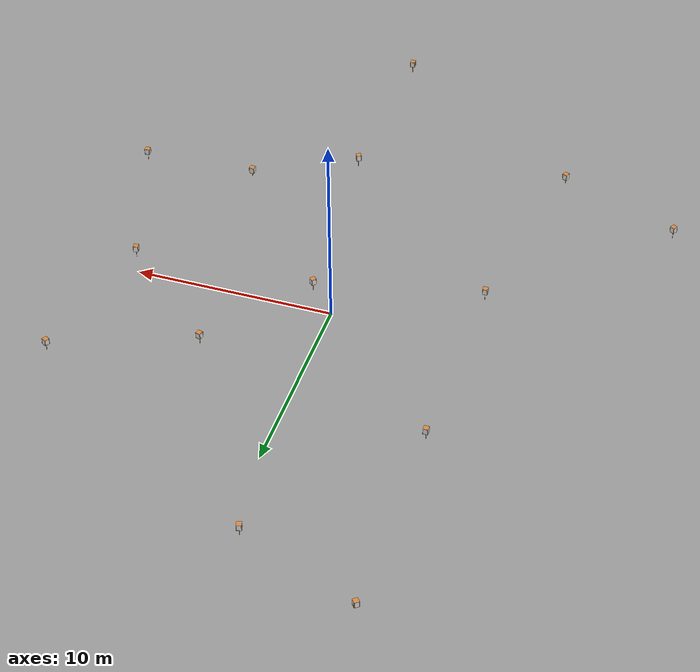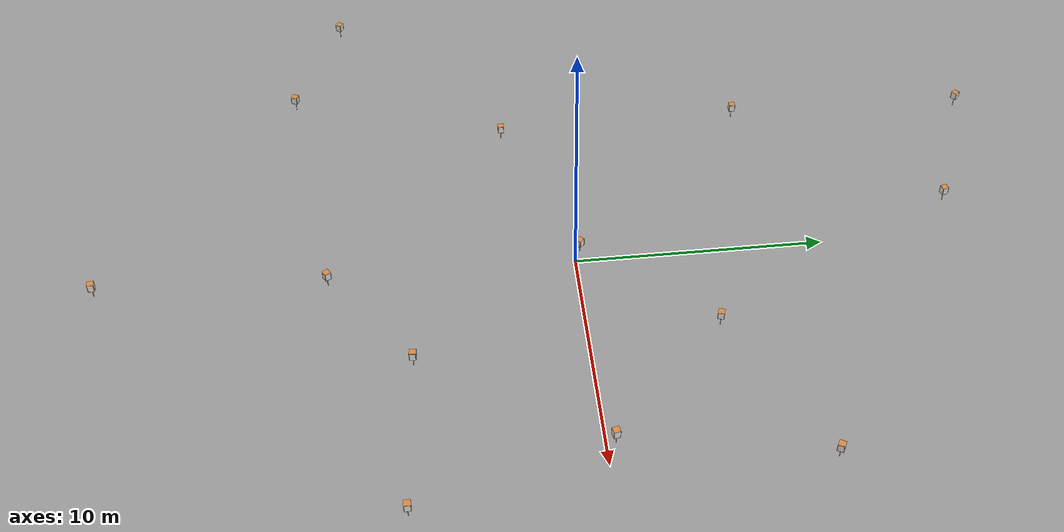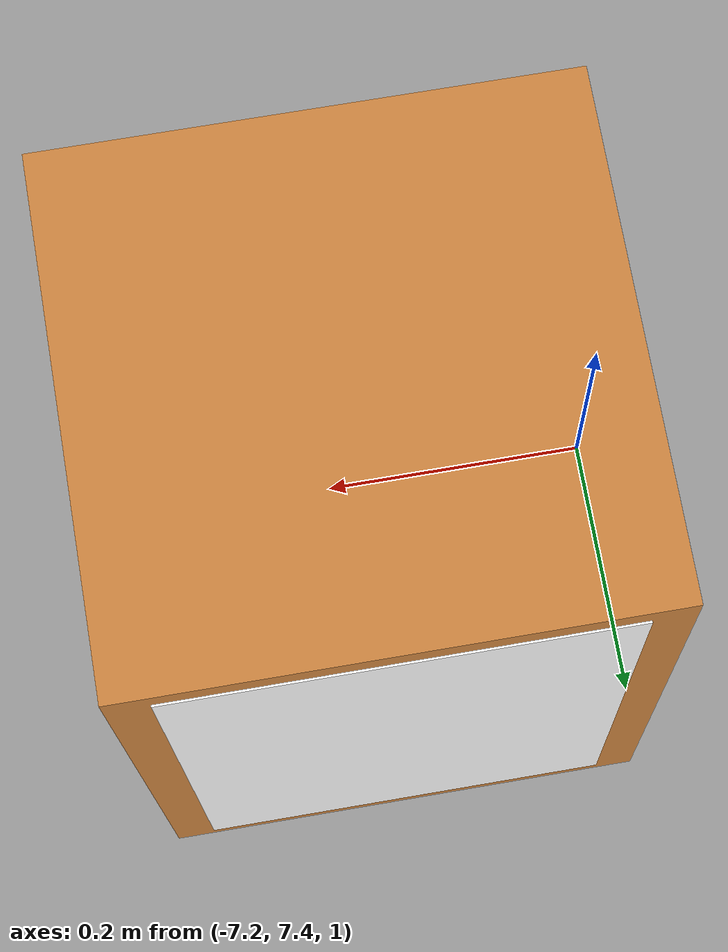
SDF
<sdf version="1.9">
 <world name="marsyard2022">
  <physics name="fast" type="bullet">
   <max_step_size>0.033</max_step_size>
   <real_time_factor>1.0</real_time_factor>
  </physics>
  <plugin filename="gz-sim-physics-system" name="gz::sim::systems::Physics"/>
  <plugin filename="gz-sim-scene-broadcaster-system" name="gz::sim::systems::SceneBroadcaster"/>
  <plugin filename="gz-sim-sensors-system" name="gz::sim::systems::Sensors">
   <render_engine>ogre2</render_engine>
  </plugin>
  <plugin filename="gz-sim-user-commands-system" name="gz::sim::systems::UserCommands"/>
  <plugin filename="WorldControl" name="World control">
   <gz-gui>
    <title>World control</title>
    <property key="showTitleBar" type="bool">false</property>
    <property key="resizable" type="bool">false</property>
    <property key="height" type="double">72</property>
    <property key="width" type="double">121</property>
    <property key="z" type="double">1</property>
    <property key="state" type="string">floating</property>
    <anchors target="3D View"><line own="left" target="left"/><line own="bottom" target="bottom"/></anchors>
   </gz-gui>
   <play_pause>true</play_pause>
   <step>true</step>
   <start_paused>true</start_paused>
   <service>/world/world_demo/control</service>
   <stats_topic>/world/world_demo/stats</stats_topic>
  </plugin>
  <light name="sun" type="directional">
   <pose>0 0 100 0 0 0.01</pose>
   <diffuse>1 1 1 1</diffuse>
   <specular>0.1 0.1 0.1 1</specular>
   <direction>-0.2 -1.0 -1.0</direction>
  </light>
  <scene>
   <ambient>0.6 0.6 0.6 1.0</ambient>
   <sky><clouds><speed>12</speed></clouds></sky>
   <shadows>true</shadows>
   <origin_visual>false</origin_visual>
  </scene>
  <model name="landmark1">
   <pose>-7.003806999999998 7.617856 1.172268 0 0 0.0</pose>
   <static>true</static>
   <link name="landmark">
    <visual name="pole_visual">
     <pose>0 0 0.09999999999999999 0 0 0</pose>
     <geometry><cylinder><radius>0.01</radius><length>0.4</length></cylinder></geometry>
     <material>
      <ambient>0.3 0.2 0.1 1</ambient>
      <diffuse>0.6 0.4 0.2 1</diffuse>
      <specular>0.1 0.1 0.1 1</specular>
      <emissive>0 0 0 1</emissive>
     </material>
    </visual>
    <collision name="pole_collision">
     <pose>0 0 0.09999999999999999 0 0 0</pose>
     <geometry><cylinder><radius>0.01</radius><length>0.4</length></cylinder></geometry>
    </collision>
    <visual name="box_visual">
     <pose>0 0 0.45999999999999996 0 0 0</pose>
     <geometry><box><size>0.25 0.25 0.32</size></box></geometry>
     <material>
      <ambient>0.8 0.52 0.25 1.0</ambient>
      <diffuse>0.8 0.52 0.25 1.0</diffuse>
      <specular>0.1 0.1 0.1 1.0</specular>
      <emissive>0.0 0.0 0.0 1.0</emissive>
     </material>
    </visual>
    <collision name="box_collision">
     <pose>0 0 0.45999999999999996 0 0 0</pose>
     <geometry><box><size>0.25 0.25 0.32</size></box></geometry>
    </collision>
    <visual name="sheet1">
     <pose>0 0.1235 0.45999999999999996 0 0 0</pose>
     <geometry><box><size>0.21 0.005 0.297</size></box></geometry>
     <material>
      <double_sided>true</double_sided>
      <ambient>1 1 1 1</ambient>
      <diffuse>1 1 1 1</diffuse>
      <specular>1 1 1 1</specular>
      <emissive>0 0 0 1</emissive>
      <pbr>
       <metal>
        <albedo_map>model://materials/textures/erc_landmark_1.png</albedo_map>
        <roughness>0.5</roughness>
        <metalness>0.0</metalness>
       </metal>
      </pbr>
     </material>
    </visual>
    <visual name="sheet2">
     <pose>0 -0.1235 0.45999999999999996 0 0 0</pose>
     <geometry><box><size>0.21 0.005 0.297</size></box></geometry>
     <material>
      <double_sided>true</double_sided>
      <ambient>1 1 1 1</ambient>
      <diffuse>1 1 1 1</diffuse>
      <specular>1 1 1 1</specular>
      <emissive>0 0 0 1</emissive>
      <pbr>
       <metal>
        <albedo_map>model://materials/textures/erc_landmark_1.png</albedo_map>
        <roughness>0.5</roughness>
        <metalness>0.0</metalness>
       </metal>
      </pbr>
     </material>
    </visual>
    <visual name="sheet3">
     <pose>0.1235 0 0.45999999999999996 0 0 1.5707963267948966</pose>
     <geometry><box><size>0.21 0.005 0.297</size></box></geometry>
     <material>
      <double_sided>true</double_sided>
      <ambient>1 1 1 1</ambient>
      <diffuse>1 1 1 1</diffuse>
      <specular>1 1 1 1</specular>
      <emissive>0 0 0 1</emissive>
      <pbr>
       <metal>
        <albedo_map>model://materials/textures/erc_landmark_1.png</albedo_map>
        <roughness>0.5</roughness>
        <metalness>0.0</metalness>
       </metal>
      </pbr>
     </material>
    </visual>
    <visual name="sheet4">
     <pose>-0.1235 0 0.45999999999999996 0 0 1.5707963267948966</pose>
     <geometry><box><size>0.21 0.005 0.297</size></box></geometry>
     <material>
      <double_sided>true</double_sided>
      <ambient>1 1 1 1</ambient>
      <diffuse>1 1 1 1</diffuse>
      <specular>1 1 1 1</specular>
      <emissive>0 0 0 1</emissive>
      <pbr>
       <metal>
        <albedo_map>model://materials/textures/erc_landmark_1.png</albedo_map>
        <roughness>0.5</roughness>
        <metalness>0.0</metalness>
       </metal>
      </pbr>
     </material>
    </visual>
   </link>
  </model>
  <model name="landmark2">
   <pose>-7.003806999999998 -2.3821440000000003 0.8922680000000001 0 0 0.0</pose>
   <static>true</static>
   <link name="landmark">
    <visual name="pole_visual">
     <pose>0 0 0.09999999999999999 0 0 0</pose>
     <geometry><cylinder><radius>0.01</radius><length>0.4</length></cylinder></geometry>
     <material>
      <ambient>0.3 0.2 0.1 1</ambient>
      <diffuse>0.6 0.4 0.2 1</diffuse>
      <specular>0.1 0.1 0.1 1</specular>
      <emissive>0 0 0 1</emissive>
     </material>
    </visual>
    <collision name="pole_collision">
     <pose>0 0 0.09999999999999999 0 0 0</pose>
     <geometry><cylinder><radius>0.01</radius><length>0.4</length></cylinder></geometry>
    </collision>
    <visual name="box_visual">
     <pose>0 0 0.45999999999999996 0 0 0</pose>
     <geometry><box><size>0.25 0.25 0.32</size></box></geometry>
     <material>
      <ambient>0.8 0.52 0.25 1.0</ambient>
      <diffuse>0.8 0.52 0.25 1.0</diffuse>
      <specular>0.1 0.1 0.1 1.0</specular>
      <emissive>0.0 0.0 0.0 1.0</emissive>
     </material>
    </visual>
    <collision name="box_collision">
     <pose>0 0 0.45999999999999996 0 0 0</pose>
     <geometry><box><size>0.25 0.25 0.32</size></box></geometry>
    </collision>
    <visual name="sheet1">
     <pose>0 0.1235 0.45999999999999996 0 0 0</pose>
     <geometry><box><size>0.21 0.005 0.297</size></box></geometry>
     <material>
      <double_sided>true</double_sided>
      <ambient>1 1 1 1</ambient>
      <diffuse>1 1 1 1</diffuse>
      <specular>1 1 1 1</specular>
      <emissive>0 0 0 1</emissive>
      <pbr>
       <metal>
        <albedo_map>model://materials/textures/erc_landmark_2.png</albedo_map>
        <roughness>0.5</roughness>
        <metalness>0.0</metalness>
       </metal>
      </pbr>
     </material>
    </visual>
    <visual name="sheet2">
     <pose>0 -0.1235 0.45999999999999996 0 0 0</pose>
     <geometry><box><size>0.21 0.005 0.297</size></box></geometry>
     <material>
      <double_sided>true</double_sided>
      <ambient>1 1 1 1</ambient>
      <diffuse>1 1 1 1</diffuse>
      <specular>1 1 1 1</specular>
      <emissive>0 0 0 1</emissive>
      <pbr>
       <metal>
        <albedo_map>model://materials/textures/erc_landmark_2.png</albedo_map>
        <roughness>0.5</roughness>
        <metalness>0.0</metalness>
       </metal>
      </pbr>
     </material>
    </visual>
    <visual name="sheet3">
     <pose>0.1235 0 0.45999999999999996 0 0 1.5707963267948966</pose>
     <geometry><box><size>0.21 0.005 0.297</size></box></geometry>
     <material>
      <double_sided>true</double_sided>
      <ambient>1 1 1 1</ambient>
      <diffuse>1 1 1 1</diffuse>
      <specular>1 1 1 1</specular>
      <emissive>0 0 0 1</emissive>
      <pbr>
       <metal>
        <albedo_map>model://materials/textures/erc_landmark_2.png</albedo_map>
        <roughness>0.5</roughness>
        <metalness>0.0</metalness>
       </metal>
      </pbr>
     </material>
    </visual>
    <visual name="sheet4">
     <pose>-0.1235 0 0.45999999999999996 0 0 1.5707963267948966</pose>
     <geometry><box><size>0.21 0.005 0.297</size></box></geometry>
     <material>
      <double_sided>true</double_sided>
      <ambient>1 1 1 1</ambient>
      <diffuse>1 1 1 1</diffuse>
      <specular>1 1 1 1</specular>
      <emissive>0 0 0 1</emissive>
      <pbr>
       <metal>
        <albedo_map>model://materials/textures/erc_landmark_2.png</albedo_map>
        <roughness>0.5</roughness>
        <metalness>0.0</metalness>
       </metal>
      </pbr>
     </material>
    </visual>
   </link>
  </model>
  <model name="landmark3">
   <pose>11.346193000000003 7.577856 1.262268 0 0 -0.5</pose>
   <static>true</static>
   <link name="landmark">
    <visual name="pole_visual">
     <pose>0 0 0.09999999999999999 0 0 0</pose>
     <geometry><cylinder><radius>0.01</radius><length>0.4</length></cylinder></geometry>
     <material>
      <ambient>0.3 0.2 0.1 1</ambient>
      <diffuse>0.6 0.4 0.2 1</diffuse>
      <specular>0.1 0.1 0.1 1</specular>
      <emissive>0 0 0 1</emissive>
     </material>
    </visual>
    <collision name="pole_collision">
     <pose>0 0 0.09999999999999999 0 0 0</pose>
     <geometry><cylinder><radius>0.01</radius><length>0.4</length></cylinder></geometry>
    </collision>
    <visual name="box_visual">
     <pose>0 0 0.45999999999999996 0 0 0</pose>
     <geometry><box><size>0.25 0.25 0.32</size></box></geometry>
     <material>
      <ambient>0.8 0.52 0.25 1.0</ambient>
      <diffuse>0.8 0.52 0.25 1.0</diffuse>
      <specular>0.1 0.1 0.1 1.0</specular>
      <emissive>0.0 0.0 0.0 1.0</emissive>
     </material>
    </visual>
    <collision name="box_collision">
     <pose>0 0 0.45999999999999996 0 0 0</pose>
     <geometry><box><size>0.25 0.25 0.32</size></box></geometry>
    </collision>
    <visual name="sheet1">
     <pose>0 0.1235 0.45999999999999996 0 0 0</pose>
     <geometry><box><size>0.21 0.005 0.297</size></box></geometry>
     <material>
      <double_sided>true</double_sided>
      <ambient>1 1 1 1</ambient>
      <diffuse>1 1 1 1</diffuse>
      <specular>1 1 1 1</specular>
      <emissive>0 0 0 1</emissive>
      <pbr>
       <metal>
        <albedo_map>model://materials/textures/erc_landmark_3.png</albedo_map>
        <roughness>0.5</roughness>
        <metalness>0.0</metalness>
       </metal>
      </pbr>
     </material>
    </visual>
    <visual name="sheet2">
     <pose>0 -0.1235 0.45999999999999996 0 0 0</pose>
     <geometry><box><size>0.21 0.005 0.297</size></box></geometry>
     <material>
      <double_sided>true</double_sided>
      <ambient>1 1 1 1</ambient>
      <diffuse>1 1 1 1</diffuse>
      <specular>1 1 1 1</specular>
      <emissive>0 0 0 1</emissive>
      <pbr>
       <metal>
        <albedo_map>model://materials/textures/erc_landmark_3.png</albedo_map>
        <roughness>0.5</roughness>
        <metalness>0.0</metalness>
       </metal>
      </pbr>
     </material>
    </visual>
    <visual name="sheet3">
     <pose>0.1235 0 0.45999999999999996 0 0 1.5707963267948966</pose>
     <geometry><box><size>0.21 0.005 0.297</size></box></geometry>
     <material>
      <double_sided>true</double_sided>
      <ambient>1 1 1 1</ambient>
      <diffuse>1 1 1 1</diffuse>
      <specular>1 1 1 1</specular>
      <emissive>0 0 0 1</emissive>
      <pbr>
       <metal>
        <albedo_map>model://materials/textures/erc_landmark_3.png</albedo_map>
        <roughness>0.5</roughness>
        <metalness>0.0</metalness>
       </metal>
      </pbr>
     </material>
    </visual>
    <visual name="sheet4">
     <pose>-0.1235 0 0.45999999999999996 0 0 1.5707963267948966</pose>
     <geometry><box><size>0.21 0.005 0.297</size></box></geometry>
     <material>
      <double_sided>true</double_sided>
      <ambient>1 1 1 1</ambient>
      <diffuse>1 1 1 1</diffuse>
      <specular>1 1 1 1</specular>
      <emissive>0 0 0 1</emissive>
      <pbr>
       <metal>
        <albedo_map>model://materials/textures/erc_landmark_3.png</albedo_map>
        <roughness>0.5</roughness>
        <metalness>0.0</metalness>
       </metal>
      </pbr>
     </material>
    </visual>
   </link>
  </model>
  <model name="landmark4">
   <pose>4.826193 4.817856 1.072268 0 0 -0.29</pose>
   <static>true</static>
   <link name="landmark">
    <visual name="pole_visual">
     <pose>0 0 0.09999999999999999 0 0 0</pose>
     <geometry><cylinder><radius>0.01</radius><length>0.4</length></cylinder></geometry>
     <material>
      <ambient>0.3 0.2 0.1 1</ambient>
      <diffuse>0.6 0.4 0.2 1</diffuse>
      <specular>0.1 0.1 0.1 1</specular>
      <emissive>0 0 0 1</emissive>
     </material>
    </visual>
    <collision name="pole_collision">
     <pose>0 0 0.09999999999999999 0 0 0</pose>
     <geometry><cylinder><radius>0.01</radius><length>0.4</length></cylinder></geometry>
    </collision>
    <visual name="box_visual">
     <pose>0 0 0.45999999999999996 0 0 0</pose>
     <geometry><box><size>0.25 0.25 0.32</size></box></geometry>
     <material>
      <ambient>0.8 0.52 0.25 1.0</ambient>
      <diffuse>0.8 0.52 0.25 1.0</diffuse>
      <specular>0.1 0.1 0.1 1.0</specular>
      <emissive>0.0 0.0 0.0 1.0</emissive>
     </material>
    </visual>
    <collision name="box_collision">
     <pose>0 0 0.45999999999999996 0 0 0</pose>
     <geometry><box><size>0.25 0.25 0.32</size></box></geometry>
    </collision>
    <visual name="sheet1">
     <pose>0 0.1235 0.45999999999999996 0 0 0</pose>
     <geometry><box><size>0.21 0.005 0.297</size></box></geometry>
     <material>
      <double_sided>true</double_sided>
      <ambient>1 1 1 1</ambient>
      <diffuse>1 1 1 1</diffuse>
      <specular>1 1 1 1</specular>
      <emissive>0 0 0 1</emissive>
      <pbr>
       <metal>
        <albedo_map>model://materials/textures/erc_landmark_4.png</albedo_map>
        <roughness>0.5</roughness>
        <metalness>0.0</metalness>
       </metal>
      </pbr>
     </material>
    </visual>
    <visual name="sheet2">
     <pose>0 -0.1235 0.45999999999999996 0 0 0</pose>
     <geometry><box><size>0.21 0.005 0.297</size></box></geometry>
     <material>
      <double_sided>true</double_sided>
      <ambient>1 1 1 1</ambient>
      <diffuse>1 1 1 1</diffuse>
      <specular>1 1 1 1</specular>
      <emissive>0 0 0 1</emissive>
      <pbr>
       <metal>
        <albedo_map>model://materials/textures/erc_landmark_4.png</albedo_map>
        <roughness>0.5</roughness>
        <metalness>0.0</metalness>
       </metal>
      </pbr>
     </material>
    </visual>
    <visual name="sheet3">
     <pose>0.1235 0 0.45999999999999996 0 0 1.5707963267948966</pose>
     <geometry><box><size>0.21 0.005 0.297</size></box></geometry>
     <material>
      <double_sided>true</double_sided>
      <ambient>1 1 1 1</ambient>
      <diffuse>1 1 1 1</diffuse>
      <specular>1 1 1 1</specular>
      <emissive>0 0 0 1</emissive>
      <pbr>
       <metal>
        <albedo_map>model://materials/textures/erc_landmark_4.png</albedo_map>
        <roughness>0.5</roughness>
        <metalness>0.0</metalness>
       </metal>
      </pbr>
     </material>
    </visual>
    <visual name="sheet4">
     <pose>-0.1235 0 0.45999999999999996 0 0 1.5707963267948966</pose>
     <geometry><box><size>0.21 0.005 0.297</size></box></geometry>
     <material>
      <double_sided>true</double_sided>
      <ambient>1 1 1 1</ambient>
      <diffuse>1 1 1 1</diffuse>
      <specular>1 1 1 1</specular>
      <emissive>0 0 0 1</emissive>
      <pbr>
       <metal>
        <albedo_map>model://materials/textures/erc_landmark_4.png</albedo_map>
        <roughness>0.5</roughness>
        <metalness>0.0</metalness>
       </metal>
      </pbr>
     </material>
    </visual>
   </link>
  </model>
  <model name="landmark5">
   <pose>1.7061930000000025 -9.572144000000002 1.582268 0 0 0.53</pose>
   <static>true</static>
   <link name="landmark">
    <visual name="pole_visual">
     <pose>0 0 0.09999999999999999 0 0 0</pose>
     <geometry><cylinder><radius>0.01</radius><length>0.4</length></cylinder></geometry>
     <material>
      <ambient>0.3 0.2 0.1 1</ambient>
      <diffuse>0.6 0.4 0.2 1</diffuse>
      <specular>0.1 0.1 0.1 1</specular>
      <emissive>0 0 0 1</emissive>
     </material>
    </visual>
    <collision name="pole_collision">
     <pose>0 0 0.09999999999999999 0 0 0</pose>
     <geometry><cylinder><radius>0.01</radius><length>0.4</length></cylinder></geometry>
    </collision>
    <visual name="box_visual">
     <pose>0 0 0.45999999999999996 0 0 0</pose>
     <geometry><box><size>0.25 0.25 0.32</size></box></geometry>
     <material>
      <ambient>0.8 0.52 0.25 1.0</ambient>
      <diffuse>0.8 0.52 0.25 1.0</diffuse>
      <specular>0.1 0.1 0.1 1.0</specular>
      <emissive>0.0 0.0 0.0 1.0</emissive>
     </material>
    </visual>
    <collision name="box_collision">
     <pose>0 0 0.45999999999999996 0 0 0</pose>
     <geometry><box><size>0.25 0.25 0.32</size></box></geometry>
    </collision>
    <visual name="sheet1">
     <pose>0 0.1235 0.45999999999999996 0 0 0</pose>
     <geometry><box><size>0.21 0.005 0.297</size></box></geometry>
     <material>
      <double_sided>true</double_sided>
      <ambient>1 1 1 1</ambient>
      <diffuse>1 1 1 1</diffuse>
      <specular>1 1 1 1</specular>
      <emissive>0 0 0 1</emissive>
      <pbr>
       <metal>
        <albedo_map>model://materials/textures/erc_landmark_5.png</albedo_map>
        <roughness>0.5</roughness>
        <metalness>0.0</metalness>
       </metal>
      </pbr>
     </material>
    </visual>
    <visual name="sheet2">
     <pose>0 -0.1235 0.45999999999999996 0 0 0</pose>
     <geometry><box><size>0.21 0.005 0.297</size></box></geometry>
     <material>
      <double_sided>true</double_sided>
      <ambient>1 1 1 1</ambient>
      <diffuse>1 1 1 1</diffuse>
      <specular>1 1 1 1</specular>
      <emissive>0 0 0 1</emissive>
      <pbr>
       <metal>
        <albedo_map>model://materials/textures/erc_landmark_5.png</albedo_map>
        <roughness>0.5</roughness>
        <metalness>0.0</metalness>
       </metal>
      </pbr>
     </material>
    </visual>
    <visual name="sheet3">
     <pose>0.1235 0 0.45999999999999996 0 0 1.5707963267948966</pose>
     <geometry><box><size>0.21 0.005 0.297</size></box></geometry>
     <material>
      <double_sided>true</double_sided>
      <ambient>1 1 1 1</ambient>
      <diffuse>1 1 1 1</diffuse>
      <specular>1 1 1 1</specular>
      <emissive>0 0 0 1</emissive>
      <pbr>
       <metal>
        <albedo_map>model://materials/textures/erc_landmark_5.png</albedo_map>
        <roughness>0.5</roughness>
        <metalness>0.0</metalness>
       </metal>
      </pbr>
     </material>
    </visual>
    <visual name="sheet4">
     <pose>-0.1235 0 0.45999999999999996 0 0 1.5707963267948966</pose>
     <geometry><box><size>0.21 0.005 0.297</size></box></geometry>
     <material>
      <double_sided>true</double_sided>
      <ambient>1 1 1 1</ambient>
      <diffuse>1 1 1 1</diffuse>
      <specular>1 1 1 1</specular>
      <emissive>0 0 0 1</emissive>
      <pbr>
       <metal>
        <albedo_map>model://materials/textures/erc_landmark_5.png</albedo_map>
        <roughness>0.5</roughness>
        <metalness>0.0</metalness>
       </metal>
      </pbr>
     </material>
    </visual>
   </link>
  </model>
  <model name="landmark6">
   <pose>9.946193000000001 0.17785599999999935 1.272268 0 0 -1.35</pose>
   <static>true</static>
   <link name="landmark">
    <visual name="pole_visual">
     <pose>0 0 0.09999999999999999 0 0 0</pose>
     <geometry><cylinder><radius>0.01</radius><length>0.4</length></cylinder></geometry>
     <material>
      <ambient>0.3 0.2 0.1 1</ambient>
      <diffuse>0.6 0.4 0.2 1</diffuse>
      <specular>0.1 0.1 0.1 1</specular>
      <emissive>0 0 0 1</emissive>
     </material>
    </visual>
    <collision name="pole_collision">
     <pose>0 0 0.09999999999999999 0 0 0</pose>
     <geometry><cylinder><radius>0.01</radius><length>0.4</length></cylinder></geometry>
    </collision>
    <visual name="box_visual">
     <pose>0 0 0.45999999999999996 0 0 0</pose>
     <geometry><box><size>0.25 0.25 0.32</size></box></geometry>
     <material>
      <ambient>0.8 0.52 0.25 1.0</ambient>
      <diffuse>0.8 0.52 0.25 1.0</diffuse>
      <specular>0.1 0.1 0.1 1.0</specular>
      <emissive>0.0 0.0 0.0 1.0</emissive>
     </material>
    </visual>
    <collision name="box_collision">
     <pose>0 0 0.45999999999999996 0 0 0</pose>
     <geometry><box><size>0.25 0.25 0.32</size></box></geometry>
    </collision>
    <visual name="sheet1">
     <pose>0 0.1235 0.45999999999999996 0 0 0</pose>
     <geometry><box><size>0.21 0.005 0.297</size></box></geometry>
     <material>
      <double_sided>true</double_sided>
      <ambient>1 1 1 1</ambient>
      <diffuse>1 1 1 1</diffuse>
      <specular>1 1 1 1</specular>
      <emissive>0 0 0 1</emissive>
      <pbr>
       <metal>
        <albedo_map>model://materials/textures/erc_landmark_6.png</albedo_map>
        <roughness>0.5</roughness>
        <metalness>0.0</metalness>
       </metal>
      </pbr>
     </material>
    </visual>
    <visual name="sheet2">
     <pose>0 -0.1235 0.45999999999999996 0 0 0</pose>
     <geometry><box><size>0.21 0.005 0.297</size></box></geometry>
     <material>
      <double_sided>true</double_sided>
      <ambient>1 1 1 1</ambient>
      <diffuse>1 1 1 1</diffuse>
      <specular>1 1 1 1</specular>
      <emissive>0 0 0 1</emissive>
      <pbr>
       <metal>
        <albedo_map>model://materials/textures/erc_landmark_6.png</albedo_map>
        <roughness>0.5</roughness>
        <metalness>0.0</metalness>
       </metal>
      </pbr>
     </material>
    </visual>
    <visual name="sheet3">
     <pose>0.1235 0 0.45999999999999996 0 0 1.5707963267948966</pose>
     <geometry><box><size>0.21 0.005 0.297</size></box></geometry>
     <material>
      <double_sided>true</double_sided>
      <ambient>1 1 1 1</ambient>
      <diffuse>1 1 1 1</diffuse>
      <specular>1 1 1 1</specular>
      <emissive>0 0 0 1</emissive>
      <pbr>
       <metal>
        <albedo_map>model://materials/textures/erc_landmark_6.png</albedo_map>
        <roughness>0.5</roughness>
        <metalness>0.0</metalness>
       </metal>
      </pbr>
     </material>
    </visual>
    <visual name="sheet4">
     <pose>-0.1235 0 0.45999999999999996 0 0 1.5707963267948966</pose>
     <geometry><box><size>0.21 0.005 0.297</size></box></geometry>
     <material>
      <double_sided>true</double_sided>
      <ambient>1 1 1 1</ambient>
      <diffuse>1 1 1 1</diffuse>
      <specular>1 1 1 1</specular>
      <emissive>0 0 0 1</emissive>
      <pbr>
       <metal>
        <albedo_map>model://materials/textures/erc_landmark_6.png</albedo_map>
        <roughness>0.5</roughness>
        <metalness>0.0</metalness>
       </metal>
      </pbr>
     </material>
    </visual>
   </link>
  </model>
  <model name="landmark7">
   <pose>-1.0338069999999977 15.187856 0.9422680000000001 0 0 -1.31</pose>
   <static>true</static>
   <link name="landmark">
    <visual name="pole_visual">
     <pose>0 0 0.09999999999999999 0 0 0</pose>
     <geometry><cylinder><radius>0.01</radius><length>0.4</length></cylinder></geometry>
     <material>
      <ambient>0.3 0.2 0.1 1</ambient>
      <diffuse>0.6 0.4 0.2 1</diffuse>
      <specular>0.1 0.1 0.1 1</specular>
      <emissive>0 0 0 1</emissive>
     </material>
    </visual>
    <collision name="pole_collision">
     <pose>0 0 0.09999999999999999 0 0 0</pose>
     <geometry><cylinder><radius>0.01</radius><length>0.4</length></cylinder></geometry>
    </collision>
    <visual name="box_visual">
     <pose>0 0 0.45999999999999996 0 0 0</pose>
     <geometry><box><size>0.25 0.25 0.32</size></box></geometry>
     <material>
      <ambient>0.8 0.52 0.25 1.0</ambient>
      <diffuse>0.8 0.52 0.25 1.0</diffuse>
      <specular>0.1 0.1 0.1 1.0</specular>
      <emissive>0.0 0.0 0.0 1.0</emissive>
     </material>
    </visual>
    <collision name="box_collision">
     <pose>0 0 0.45999999999999996 0 0 0</pose>
     <geometry><box><size>0.25 0.25 0.32</size></box></geometry>
    </collision>
    <visual name="sheet1">
     <pose>0 0.1235 0.45999999999999996 0 0 0</pose>
     <geometry><box><size>0.21 0.005 0.297</size></box></geometry>
     <material>
      <double_sided>true</double_sided>
      <ambient>1 1 1 1</ambient>
      <diffuse>1 1 1 1</diffuse>
      <specular>1 1 1 1</specular>
      <emissive>0 0 0 1</emissive>
      <pbr>
       <metal>
        <albedo_map>model://materials/textures/erc_landmark_7.png</albedo_map>
        <roughness>0.5</roughness>
        <metalness>0.0</metalness>
       </metal>
      </pbr>
     </material>
    </visual>
    <visual name="sheet2">
     <pose>0 -0.1235 0.45999999999999996 0 0 0</pose>
     <geometry><box><size>0.21 0.005 0.297</size></box></geometry>
     <material>
      <double_sided>true</double_sided>
      <ambient>1 1 1 1</ambient>
      <diffuse>1 1 1 1</diffuse>
      <specular>1 1 1 1</specular>
      <emissive>0 0 0 1</emissive>
      <pbr>
       <metal>
        <albedo_map>model://materials/textures/erc_landmark_7.png</albedo_map>
        <roughness>0.5</roughness>
        <metalness>0.0</metalness>
       </metal>
      </pbr>
     </material>
    </visual>
    <visual name="sheet3">
     <pose>0.1235 0 0.45999999999999996 0 0 1.5707963267948966</pose>
     <geometry><box><size>0.21 0.005 0.297</size></box></geometry>
     <material>
      <double_sided>true</double_sided>
      <ambient>1 1 1 1</ambient>
      <diffuse>1 1 1 1</diffuse>
      <specular>1 1 1 1</specular>
      <emissive>0 0 0 1</emissive>
      <pbr>
       <metal>
        <albedo_map>model://materials/textures/erc_landmark_7.png</albedo_map>
        <roughness>0.5</roughness>
        <metalness>0.0</metalness>
       </metal>
      </pbr>
     </material>
    </visual>
    <visual name="sheet4">
     <pose>-0.1235 0 0.45999999999999996 0 0 1.5707963267948966</pose>
     <geometry><box><size>0.21 0.005 0.297</size></box></geometry>
     <material>
      <double_sided>true</double_sided>
      <ambient>1 1 1 1</ambient>
      <diffuse>1 1 1 1</diffuse>
      <specular>1 1 1 1</specular>
      <emissive>0 0 0 1</emissive>
      <pbr>
       <metal>
        <albedo_map>model://materials/textures/erc_landmark_7.png</albedo_map>
        <roughness>0.5</roughness>
        <metalness>0.0</metalness>
       </metal>
      </pbr>
     </material>
    </visual>
   </link>
  </model>
  <model name="landmark8">
   <pose>0.8661930000000027 0.047855999999999455 1.4522680000000001 0 0 -0.79</pose>
   <static>true</static>
   <link name="landmark">
    <visual name="pole_visual">
     <pose>0 0 0.09999999999999999 0 0 0</pose>
     <geometry><cylinder><radius>0.01</radius><length>0.4</length></cylinder></geometry>
     <material>
      <ambient>0.3 0.2 0.1 1</ambient>
      <diffuse>0.6 0.4 0.2 1</diffuse>
      <specular>0.1 0.1 0.1 1</specular>
      <emissive>0 0 0 1</emissive>
     </material>
    </visual>
    <collision name="pole_collision">
     <pose>0 0 0.09999999999999999 0 0 0</pose>
     <geometry><cylinder><radius>0.01</radius><length>0.4</length></cylinder></geometry>
    </collision>
    <visual name="box_visual">
     <pose>0 0 0.45999999999999996 0 0 0</pose>
     <geometry><box><size>0.25 0.25 0.32</size></box></geometry>
     <material>
      <ambient>0.8 0.52 0.25 1.0</ambient>
      <diffuse>0.8 0.52 0.25 1.0</diffuse>
      <specular>0.1 0.1 0.1 1.0</specular>
      <emissive>0.0 0.0 0.0 1.0</emissive>
     </material>
    </visual>
    <collision name="box_collision">
     <pose>0 0 0.45999999999999996 0 0 0</pose>
     <geometry><box><size>0.25 0.25 0.32</size></box></geometry>
    </collision>
    <visual name="sheet1">
     <pose>0 0.1235 0.45999999999999996 0 0 0</pose>
     <geometry><box><size>0.21 0.005 0.297</size></box></geometry>
     <material>
      <double_sided>true</double_sided>
      <ambient>1 1 1 1</ambient>
      <diffuse>1 1 1 1</diffuse>
      <specular>1 1 1 1</specular>
      <emissive>0 0 0 1</emissive>
      <pbr>
       <metal>
        <albedo_map>model://materials/textures/erc_landmark_8.png</albedo_map>
        <roughness>0.5</roughness>
        <metalness>0.0</metalness>
       </metal>
      </pbr>
     </material>
    </visual>
    <visual name="sheet2">
     <pose>0 -0.1235 0.45999999999999996 0 0 0</pose>
     <geometry><box><size>0.21 0.005 0.297</size></box></geometry>
     <material>
      <double_sided>true</double_sided>
      <ambient>1 1 1 1</ambient>
      <diffuse>1 1 1 1</diffuse>
      <specular>1 1 1 1</specular>
      <emissive>0 0 0 1</emissive>
      <pbr>
       <metal>
        <albedo_map>model://materials/textures/erc_landmark_8.png</albedo_map>
        <roughness>0.5</roughness>
        <metalness>0.0</metalness>
       </metal>
      </pbr>
     </material>
    </visual>
    <visual name="sheet3">
     <pose>0.1235 0 0.45999999999999996 0 0 1.5707963267948966</pose>
     <geometry><box><size>0.21 0.005 0.297</size></box></geometry>
     <material>
      <double_sided>true</double_sided>
      <ambient>1 1 1 1</ambient>
      <diffuse>1 1 1 1</diffuse>
      <specular>1 1 1 1</specular>
      <emissive>0 0 0 1</emissive>
      <pbr>
       <metal>
        <albedo_map>model://materials/textures/erc_landmark_8.png</albedo_map>
        <roughness>0.5</roughness>
        <metalness>0.0</metalness>
       </metal>
      </pbr>
     </material>
    </visual>
    <visual name="sheet4">
     <pose>-0.1235 0 0.45999999999999996 0 0 1.5707963267948966</pose>
     <geometry><box><size>0.21 0.005 0.297</size></box></geometry>
     <material>
      <double_sided>true</double_sided>
      <ambient>1 1 1 1</ambient>
      <diffuse>1 1 1 1</diffuse>
      <specular>1 1 1 1</specular>
      <emissive>0 0 0 1</emissive>
      <pbr>
       <metal>
        <albedo_map>model://materials/textures/erc_landmark_8.png</albedo_map>
        <roughness>0.5</roughness>
        <metalness>0.0</metalness>
       </metal>
      </pbr>
     </material>
    </visual>
   </link>
  </model>
  <model name="landmark9">
   <pose>-7.003806999999998 17.617856 0.962268 0 0 -0.9</pose>
   <static>true</static>
   <link name="landmark">
    <visual name="pole_visual">
     <pose>0 0 0.09999999999999999 0 0 0</pose>
     <geometry><cylinder><radius>0.01</radius><length>0.4</length></cylinder></geometry>
     <material>
      <ambient>0.3 0.2 0.1 1</ambient>
      <diffuse>0.6 0.4 0.2 1</diffuse>
      <specular>0.1 0.1 0.1 1</specular>
      <emissive>0 0 0 1</emissive>
     </material>
    </visual>
    <collision name="pole_collision">
     <pose>0 0 0.09999999999999999 0 0 0</pose>
     <geometry><cylinder><radius>0.01</radius><length>0.4</length></cylinder></geometry>
    </collision>
    <visual name="box_visual">
     <pose>0 0 0.45999999999999996 0 0 0</pose>
     <geometry><box><size>0.25 0.25 0.32</size></box></geometry>
     <material>
      <ambient>0.8 0.52 0.25 1.0</ambient>
      <diffuse>0.8 0.52 0.25 1.0</diffuse>
      <specular>0.1 0.1 0.1 1.0</specular>
      <emissive>0.0 0.0 0.0 1.0</emissive>
     </material>
    </visual>
    <collision name="box_collision">
     <pose>0 0 0.45999999999999996 0 0 0</pose>
     <geometry><box><size>0.25 0.25 0.32</size></box></geometry>
    </collision>
    <visual name="sheet1">
     <pose>0 0.1235 0.45999999999999996 0 0 0</pose>
     <geometry><box><size>0.21 0.005 0.297</size></box></geometry>
     <material>
      <double_sided>true</double_sided>
      <ambient>1 1 1 1</ambient>
      <diffuse>1 1 1 1</diffuse>
      <specular>1 1 1 1</specular>
      <emissive>0 0 0 1</emissive>
      <pbr>
       <metal>
        <albedo_map>model://materials/textures/erc_landmark_9.png</albedo_map>
        <roughness>0.5</roughness>
        <metalness>0.0</metalness>
       </metal>
      </pbr>
     </material>
    </visual>
    <visual name="sheet2">
     <pose>0 -0.1235 0.45999999999999996 0 0 0</pose>
     <geometry><box><size>0.21 0.005 0.297</size></box></geometry>
     <material>
      <double_sided>true</double_sided>
      <ambient>1 1 1 1</ambient>
      <diffuse>1 1 1 1</diffuse>
      <specular>1 1 1 1</specular>
      <emissive>0 0 0 1</emissive>
      <pbr>
       <metal>
        <albedo_map>model://materials/textures/erc_landmark_9.png</albedo_map>
        <roughness>0.5</roughness>
        <metalness>0.0</metalness>
       </metal>
      </pbr>
     </material>
    </visual>
    <visual name="sheet3">
     <pose>0.1235 0 0.45999999999999996 0 0 1.5707963267948966</pose>
     <geometry><box><size>0.21 0.005 0.297</size></box></geometry>
     <material>
      <double_sided>true</double_sided>
      <ambient>1 1 1 1</ambient>
      <diffuse>1 1 1 1</diffuse>
      <specular>1 1 1 1</specular>
      <emissive>0 0 0 1</emissive>
      <pbr>
       <metal>
        <albedo_map>model://materials/textures/erc_landmark_9.png</albedo_map>
        <roughness>0.5</roughness>
        <metalness>0.0</metalness>
       </metal>
      </pbr>
     </material>
    </visual>
    <visual name="sheet4">
     <pose>-0.1235 0 0.45999999999999996 0 0 1.5707963267948966</pose>
     <geometry><box><size>0.21 0.005 0.297</size></box></geometry>
     <material>
      <double_sided>true</double_sided>
      <ambient>1 1 1 1</ambient>
      <diffuse>1 1 1 1</diffuse>
      <specular>1 1 1 1</specular>
      <emissive>0 0 0 1</emissive>
      <pbr>
       <metal>
        <albedo_map>model://materials/textures/erc_landmark_9.png</albedo_map>
        <roughness>0.5</roughness>
        <metalness>0.0</metalness>
       </metal>
      </pbr>
     </material>
    </visual>
   </link>
  </model>
  <model name="landmark10">
   <pose>12.256193000000003 -6.902144 1.482268 0 0 -1.52</pose>
   <static>true</static>
   <link name="landmark">
    <visual name="pole_visual">
     <pose>0 0 0.09999999999999999 0 0 0</pose>
     <geometry><cylinder><radius>0.01</radius><length>0.4</length></cylinder></geometry>
     <material>
      <ambient>0.3 0.2 0.1 1</ambient>
      <diffuse>0.6 0.4 0.2 1</diffuse>
      <specular>0.1 0.1 0.1 1</specular>
      <emissive>0 0 0 1</emissive>
     </material>
    </visual>
    <collision name="pole_collision">
     <pose>0 0 0.09999999999999999 0 0 0</pose>
     <geometry><cylinder><radius>0.01</radius><length>0.4</length></cylinder></geometry>
    </collision>
    <visual name="box_visual">
     <pose>0 0 0.45999999999999996 0 0 0</pose>
     <geometry><box><size>0.25 0.25 0.32</size></box></geometry>
     <material>
      <ambient>0.8 0.52 0.25 1.0</ambient>
      <diffuse>0.8 0.52 0.25 1.0</diffuse>
      <specular>0.1 0.1 0.1 1.0</specular>
      <emissive>0.0 0.0 0.0 1.0</emissive>
     </material>
    </visual>
    <collision name="box_collision">
     <pose>0 0 0.45999999999999996 0 0 0</pose>
     <geometry><box><size>0.25 0.25 0.32</size></box></geometry>
    </collision>
    <visual name="sheet1">
     <pose>0 0.1235 0.45999999999999996 0 0 0</pose>
     <geometry><box><size>0.21 0.005 0.297</size></box></geometry>
     <material>
      <double_sided>true</double_sided>
      <ambient>1 1 1 1</ambient>
      <diffuse>1 1 1 1</diffuse>
      <specular>1 1 1 1</specular>
      <emissive>0 0 0 1</emissive>
      <pbr>
       <metal>
        <albedo_map>model://materials/textures/erc_landmark_10.png</albedo_map>
        <roughness>0.5</roughness>
        <metalness>0.0</metalness>
       </metal>
      </pbr>
     </material>
    </visual>
    <visual name="sheet2">
     <pose>0 -0.1235 0.45999999999999996 0 0 0</pose>
     <geometry><box><size>0.21 0.005 0.297</size></box></geometry>
     <material>
      <double_sided>true</double_sided>
      <ambient>1 1 1 1</ambient>
      <diffuse>1 1 1 1</diffuse>
      <specular>1 1 1 1</specular>
      <emissive>0 0 0 1</emissive>
      <pbr>
       <metal>
        <albedo_map>model://materials/textures/erc_landmark_10.png</albedo_map>
        <roughness>0.5</roughness>
        <metalness>0.0</metalness>
       </metal>
      </pbr>
     </material>
    </visual>
    <visual name="sheet3">
     <pose>0.1235 0 0.45999999999999996 0 0 1.5707963267948966</pose>
     <geometry><box><size>0.21 0.005 0.297</size></box></geometry>
     <material>
      <double_sided>true</double_sided>
      <ambient>1 1 1 1</ambient>
      <diffuse>1 1 1 1</diffuse>
      <specular>1 1 1 1</specular>
      <emissive>0 0 0 1</emissive>
      <pbr>
       <metal>
        <albedo_map>model://materials/textures/erc_landmark_10.png</albedo_map>
        <roughness>0.5</roughness>
        <metalness>0.0</metalness>
       </metal>
      </pbr>
     </material>
    </visual>
    <visual name="sheet4">
     <pose>-0.1235 0 0.45999999999999996 0 0 1.5707963267948966</pose>
     <geometry><box><size>0.21 0.005 0.297</size></box></geometry>
     <material>
      <double_sided>true</double_sided>
      <ambient>1 1 1 1</ambient>
      <diffuse>1 1 1 1</diffuse>
      <specular>1 1 1 1</specular>
      <emissive>0 0 0 1</emissive>
      <pbr>
       <metal>
        <albedo_map>model://materials/textures/erc_landmark_10.png</albedo_map>
        <roughness>0.5</roughness>
        <metalness>0.0</metalness>
       </metal>
      </pbr>
     </material>
    </visual>
   </link>
  </model>
  <model name="landmark11">
   <pose>1.4061930000000018 -18.212144 1.662268 0 0 0.08</pose>
   <static>true</static>
   <link name="landmark">
    <visual name="pole_visual">
     <pose>0 0 0.09999999999999999 0 0 0</pose>
     <geometry><cylinder><radius>0.01</radius><length>0.4</length></cylinder></geometry>
     <material>
      <ambient>0.3 0.2 0.1 1</ambient>
      <diffuse>0.6 0.4 0.2 1</diffuse>
      <specular>0.1 0.1 0.1 1</specular>
      <emissive>0 0 0 1</emissive>
     </material>
    </visual>
    <collision name="pole_collision">
     <pose>0 0 0.09999999999999999 0 0 0</pose>
     <geometry><cylinder><radius>0.01</radius><length>0.4</length></cylinder></geometry>
    </collision>
    <visual name="box_visual">
     <pose>0 0 0.45999999999999996 0 0 0</pose>
     <geometry><box><size>0.25 0.25 0.32</size></box></geometry>
     <material>
      <ambient>0.8 0.52 0.25 1.0</ambient>
      <diffuse>0.8 0.52 0.25 1.0</diffuse>
      <specular>0.1 0.1 0.1 1.0</specular>
      <emissive>0.0 0.0 0.0 1.0</emissive>
     </material>
    </visual>
    <collision name="box_collision">
     <pose>0 0 0.45999999999999996 0 0 0</pose>
     <geometry><box><size>0.25 0.25 0.32</size></box></geometry>
    </collision>
    <visual name="sheet1">
     <pose>0 0.1235 0.45999999999999996 0 0 0</pose>
     <geometry><box><size>0.21 0.005 0.297</size></box></geometry>
     <material>
      <double_sided>true</double_sided>
      <ambient>1 1 1 1</ambient>
      <diffuse>1 1 1 1</diffuse>
      <specular>1 1 1 1</specular>
      <emissive>0 0 0 1</emissive>
      <pbr>
       <metal>
        <albedo_map>model://materials/textures/erc_landmark_11.png</albedo_map>
        <roughness>0.5</roughness>
        <metalness>0.0</metalness>
       </metal>
      </pbr>
     </material>
    </visual>
    <visual name="sheet2">
     <pose>0 -0.1235 0.45999999999999996 0 0 0</pose>
     <geometry><box><size>0.21 0.005 0.297</size></box></geometry>
     <material>
      <double_sided>true</double_sided>
      <ambient>1 1 1 1</ambient>
      <diffuse>1 1 1 1</diffuse>
      <specular>1 1 1 1</specular>
      <emissive>0 0 0 1</emissive>
      <pbr>
       <metal>
        <albedo_map>model://materials/textures/erc_landmark_11.png</albedo_map>
        <roughness>0.5</roughness>
        <metalness>0.0</metalness>
       </metal>
      </pbr>
     </material>
    </visual>
    <visual name="sheet3">
     <pose>0.1235 0 0.45999999999999996 0 0 1.5707963267948966</pose>
     <geometry><box><size>0.21 0.005 0.297</size></box></geometry>
     <material>
      <double_sided>true</double_sided>
      <ambient>1 1 1 1</ambient>
      <diffuse>1 1 1 1</diffuse>
      <specular>1 1 1 1</specular>
      <emissive>0 0 0 1</emissive>
      <pbr>
       <metal>
        <albedo_map>model://materials/textures/erc_landmark_11.png</albedo_map>
        <roughness>0.5</roughness>
        <metalness>0.0</metalness>
       </metal>
      </pbr>
     </material>
    </visual>
    <visual name="sheet4">
     <pose>-0.1235 0 0.45999999999999996 0 0 1.5707963267948966</pose>
     <geometry><box><size>0.21 0.005 0.297</size></box></geometry>
     <material>
      <double_sided>true</double_sided>
      <ambient>1 1 1 1</ambient>
      <diffuse>1 1 1 1</diffuse>
      <specular>1 1 1 1</specular>
      <emissive>0 0 0 1</emissive>
      <pbr>
       <metal>
        <albedo_map>model://materials/textures/erc_landmark_11.png</albedo_map>
        <roughness>0.5</roughness>
        <metalness>0.0</metalness>
       </metal>
      </pbr>
     </material>
    </visual>
   </link>
  </model>
  <model name="landmark12">
   <pose>6.3361930000000015 -6.492144 1.982268 0 0 -0.1</pose>
   <static>true</static>
   <link name="landmark">
    <visual name="pole_visual">
     <pose>0 0 0.09999999999999999 0 0 0</pose>
     <geometry><cylinder><radius>0.01</radius><length>0.4</length></cylinder></geometry>
     <material>
      <ambient>0.3 0.2 0.1 1</ambient>
      <diffuse>0.6 0.4 0.2 1</diffuse>
      <specular>0.1 0.1 0.1 1</specular>
      <emissive>0 0 0 1</emissive>
     </material>
    </visual>
    <collision name="pole_collision">
     <pose>0 0 0.09999999999999999 0 0 0</pose>
     <geometry><cylinder><radius>0.01</radius><length>0.4</length></cylinder></geometry>
    </collision>
    <visual name="box_visual">
     <pose>0 0 0.45999999999999996 0 0 0</pose>
     <geometry><box><size>0.25 0.25 0.32</size></box></geometry>
     <material>
      <ambient>0.8 0.52 0.25 1.0</ambient>
      <diffuse>0.8 0.52 0.25 1.0</diffuse>
      <specular>0.1 0.1 0.1 1.0</specular>
      <emissive>0.0 0.0 0.0 1.0</emissive>
     </material>
    </visual>
    <collision name="box_collision">
     <pose>0 0 0.45999999999999996 0 0 0</pose>
     <geometry><box><size>0.25 0.25 0.32</size></box></geometry>
    </collision>
    <visual name="sheet1">
     <pose>0 0.1235 0.45999999999999996 0 0 0</pose>
     <geometry><box><size>0.21 0.005 0.297</size></box></geometry>
     <material>
      <double_sided>true</double_sided>
      <ambient>1 1 1 1</ambient>
      <diffuse>1 1 1 1</diffuse>
      <specular>1 1 1 1</specular>
      <emissive>0 0 0 1</emissive>
      <pbr>
       <metal>
        <albedo_map>model://materials/textures/erc_landmark_12.png</albedo_map>
        <roughness>0.5</roughness>
        <metalness>0.0</metalness>
       </metal>
      </pbr>
     </material>
    </visual>
    <visual name="sheet2">
     <pose>0 -0.1235 0.45999999999999996 0 0 0</pose>
     <geometry><box><size>0.21 0.005 0.297</size></box></geometry>
     <material>
      <double_sided>true</double_sided>
      <ambient>1 1 1 1</ambient>
      <diffuse>1 1 1 1</diffuse>
      <specular>1 1 1 1</specular>
      <emissive>0 0 0 1</emissive>
      <pbr>
       <metal>
        <albedo_map>model://materials/textures/erc_landmark_12.png</albedo_map>
        <roughness>0.5</roughness>
        <metalness>0.0</metalness>
       </metal>
      </pbr>
     </material>
    </visual>
    <visual name="sheet3">
     <pose>0.1235 0 0.45999999999999996 0 0 1.5707963267948966</pose>
     <geometry><box><size>0.21 0.005 0.297</size></box></geometry>
     <material>
      <double_sided>true</double_sided>
      <ambient>1 1 1 1</ambient>
      <diffuse>1 1 1 1</diffuse>
      <specular>1 1 1 1</specular>
      <emissive>0 0 0 1</emissive>
      <pbr>
       <metal>
        <albedo_map>model://materials/textures/erc_landmark_12.png</albedo_map>
        <roughness>0.5</roughness>
        <metalness>0.0</metalness>
       </metal>
      </pbr>
     </material>
    </visual>
    <visual name="sheet4">
     <pose>-0.1235 0 0.45999999999999996 0 0 1.5707963267948966</pose>
     <geometry><box><size>0.21 0.005 0.297</size></box></geometry>
     <material>
      <double_sided>true</double_sided>
      <ambient>1 1 1 1</ambient>
      <diffuse>1 1 1 1</diffuse>
      <specular>1 1 1 1</specular>
      <emissive>0 0 0 1</emissive>
      <pbr>
       <metal>
        <albedo_map>model://materials/textures/erc_landmark_12.png</albedo_map>
        <roughness>0.5</roughness>
        <metalness>0.0</metalness>
       </metal>
      </pbr>
     </material>
    </visual>
   </link>
  </model>
  <model name="landmark13">
   <pose>-8.823806999999999 -11.012144 1.792268 0 0 -0.4</pose>
   <static>true</static>
   <link name="landmark">
    <visual name="pole_visual">
     <pose>0 0 0.09999999999999999 0 0 0</pose>
     <geometry><cylinder><radius>0.01</radius><length>0.4</length></cylinder></geometry>
     <material>
      <ambient>0.3 0.2 0.1 1</ambient>
      <diffuse>0.6 0.4 0.2 1</diffuse>
      <specular>0.1 0.1 0.1 1</specular>
      <emissive>0 0 0 1</emissive>
     </material>
    </visual>
    <collision name="pole_collision">
     <pose>0 0 0.09999999999999999 0 0 0</pose>
     <geometry><cylinder><radius>0.01</radius><length>0.4</length></cylinder></geometry>
    </collision>
    <visual name="box_visual">
     <pose>0 0 0.45999999999999996 0 0 0</pose>
     <geometry><box><size>0.25 0.25 0.32</size></box></geometry>
     <material>
      <ambient>0.8 0.52 0.25 1.0</ambient>
      <diffuse>0.8 0.52 0.25 1.0</diffuse>
      <specular>0.1 0.1 0.1 1.0</specular>
      <emissive>0.0 0.0 0.0 1.0</emissive>
     </material>
    </visual>
    <collision name="box_collision">
     <pose>0 0 0.45999999999999996 0 0 0</pose>
     <geometry><box><size>0.25 0.25 0.32</size></box></geometry>
    </collision>
    <visual name="sheet1">
     <pose>0 0.1235 0.45999999999999996 0 0 0</pose>
     <geometry><box><size>0.21 0.005 0.297</size></box></geometry>
     <material>
      <double_sided>true</double_sided>
      <ambient>1 1 1 1</ambient>
      <diffuse>1 1 1 1</diffuse>
      <specular>1 1 1 1</specular>
      <emissive>0 0 0 1</emissive>
      <pbr>
       <metal>
        <albedo_map>model://materials/textures/erc_landmark_13.png</albedo_map>
        <roughness>0.5</roughness>
        <metalness>0.0</metalness>
       </metal>
      </pbr>
     </material>
    </visual>
    <visual name="sheet2">
     <pose>0 -0.1235 0.45999999999999996 0 0 0</pose>
     <geometry><box><size>0.21 0.005 0.297</size></box></geometry>
     <material>
      <double_sided>true</double_sided>
      <ambient>1 1 1 1</ambient>
      <diffuse>1 1 1 1</diffuse>
      <specular>1 1 1 1</specular>
      <emissive>0 0 0 1</emissive>
      <pbr>
       <metal>
        <albedo_map>model://materials/textures/erc_landmark_13.png</albedo_map>
        <roughness>0.5</roughness>
        <metalness>0.0</metalness>
       </metal>
      </pbr>
     </material>
    </visual>
    <visual name="sheet3">
     <pose>0.1235 0 0.45999999999999996 0 0 1.5707963267948966</pose>
     <geometry><box><size>0.21 0.005 0.297</size></box></geometry>
     <material>
      <double_sided>true</double_sided>
      <ambient>1 1 1 1</ambient>
      <diffuse>1 1 1 1</diffuse>
      <specular>1 1 1 1</specular>
      <emissive>0 0 0 1</emissive>
      <pbr>
       <metal>
        <albedo_map>model://materials/textures/erc_landmark_13.png</albedo_map>
        <roughness>0.5</roughness>
        <metalness>0.0</metalness>
       </metal>
      </pbr>
     </material>
    </visual>
    <visual name="sheet4">
     <pose>-0.1235 0 0.45999999999999996 0 0 1.5707963267948966</pose>
     <geometry><box><size>0.21 0.005 0.297</size></box></geometry>
     <material>
      <double_sided>true</double_sided>
      <ambient>1 1 1 1</ambient>
      <diffuse>1 1 1 1</diffuse>
      <specular>1 1 1 1</specular>
      <emissive>0 0 0 1</emissive>
      <pbr>
       <metal>
        <albedo_map>model://materials/textures/erc_landmark_13.png</albedo_map>
        <roughness>0.5</roughness>
        <metalness>0.0</metalness>
       </metal>
      </pbr>
     </material>
    </visual>
   </link>
  </model>
  <model name="landmark15">
   <pose>-14.733806999999999 -9.222144 1.252268 0 0 -0.56</pose>
   <static>true</static>
   <link name="landmark">
    <visual name="pole_visual">
     <pose>0 0 0.09999999999999999 0 0 0</pose>
     <geometry><cylinder><radius>0.01</radius><length>0.4</length></cylinder></geometry>
     <material>
      <ambient>0.3 0.2 0.1 1</ambient>
      <diffuse>0.6 0.4 0.2 1</diffuse>
      <specular>0.1 0.1 0.1 1</specular>
      <emissive>0 0 0 1</emissive>
     </material>
    </visual>
    <collision name="pole_collision">
     <pose>0 0 0.09999999999999999 0 0 0</pose>
     <geometry><cylinder><radius>0.01</radius><length>0.4</length></cylinder></geometry>
    </collision>
    <visual name="box_visual">
     <pose>0 0 0.45999999999999996 0 0 0</pose>
     <geometry><box><size>0.25 0.25 0.32</size></box></geometry>
     <material>
      <ambient>0.8 0.52 0.25 1.0</ambient>
      <diffuse>0.8 0.52 0.25 1.0</diffuse>
      <specular>0.1 0.1 0.1 1.0</specular>
      <emissive>0.0 0.0 0.0 1.0</emissive>
     </material>
    </visual>
    <collision name="box_collision">
     <pose>0 0 0.45999999999999996 0 0 0</pose>
     <geometry><box><size>0.25 0.25 0.32</size></box></geometry>
    </collision>
    <visual name="sheet1">
     <pose>0 0.1235 0.45999999999999996 0 0 0</pose>
     <geometry><box><size>0.21 0.005 0.297</size></box></geometry>
     <material>
      <double_sided>true</double_sided>
      <ambient>1 1 1 1</ambient>
      <diffuse>1 1 1 1</diffuse>
      <specular>1 1 1 1</specular>
      <emissive>0 0 0 1</emissive>
      <pbr>
       <metal>
        <albedo_map>model://materials/textures/erc_landmark_15.png</albedo_map>
        <roughness>0.5</roughness>
        <metalness>0.0</metalness>
       </metal>
      </pbr>
     </material>
    </visual>
    <visual name="sheet2">
     <pose>0 -0.1235 0.45999999999999996 0 0 0</pose>
     <geometry><box><size>0.21 0.005 0.297</size></box></geometry>
     <material>
      <double_sided>true</double_sided>
      <ambient>1 1 1 1</ambient>
      <diffuse>1 1 1 1</diffuse>
      <specular>1 1 1 1</specular>
      <emissive>0 0 0 1</emissive>
      <pbr>
       <metal>
        <albedo_map>model://materials/textures/erc_landmark_15.png</albedo_map>
        <roughness>0.5</roughness>
        <metalness>0.0</metalness>
       </metal>
      </pbr>
     </material>
    </visual>
    <visual name="sheet3">
     <pose>0.1235 0 0.45999999999999996 0 0 1.5707963267948966</pose>
     <geometry><box><size>0.21 0.005 0.297</size></box></geometry>
     <material>
      <double_sided>true</double_sided>
      <ambient>1 1 1 1</ambient>
      <diffuse>1 1 1 1</diffuse>
      <specular>1 1 1 1</specular>
      <emissive>0 0 0 1</emissive>
      <pbr>
       <metal>
        <albedo_map>model://materials/textures/erc_landmark_15.png</albedo_map>
        <roughness>0.5</roughness>
        <metalness>0.0</metalness>
       </metal>
      </pbr>
     </material>
    </visual>
    <visual name="sheet4">
     <pose>-0.1235 0 0.45999999999999996 0 0 1.5707963267948966</pose>
     <geometry><box><size>0.21 0.005 0.297</size></box></geometry>
     <material>
      <double_sided>true</double_sided>
      <ambient>1 1 1 1</ambient>
      <diffuse>1 1 1 1</diffuse>
      <specular>1 1 1 1</specular>
      <emissive>0 0 0 1</emissive>
      <pbr>
       <metal>
        <albedo_map>model://materials/textures/erc_landmark_15.png</albedo_map>
        <roughness>0.5</roughness>
        <metalness>0.0</metalness>
       </metal>
      </pbr>
     </material>
    </visual>
   </link>
  </model>
 </world>
</sdf>
